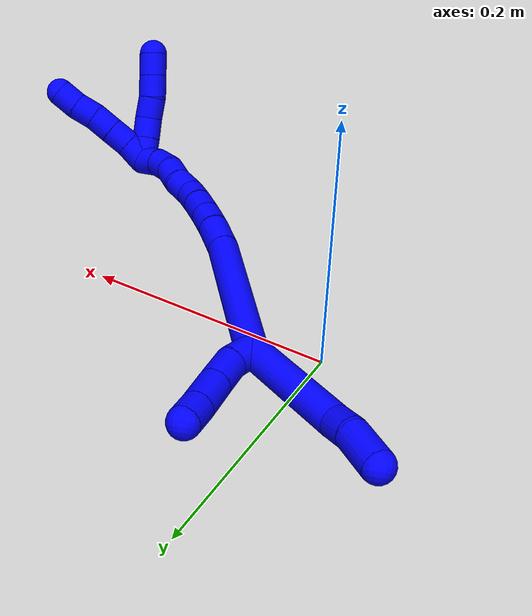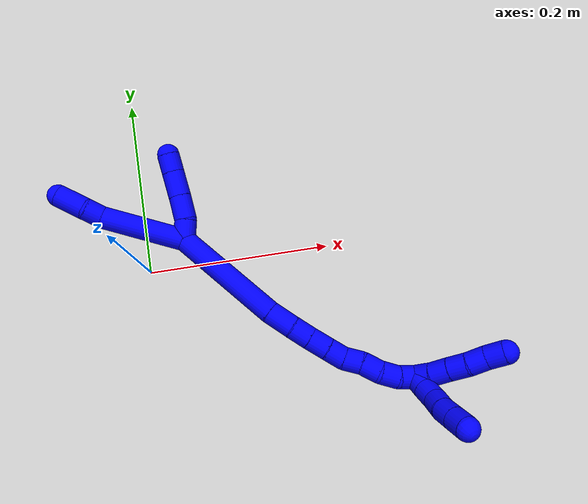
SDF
<sdf version="1.7">
 <world name="default">
  <model name="1">
   <static>0</static>
   <link name="1">
    <collision name="collision-cylinder-e_1_2_8">
     <pose>-0.030179 0.029188 -0.022548 -2.22855 -0.685759 1.25706</pose>
     <geometry><cylinder><radius>0.0125</radius><length>0.095312</length></cylinder></geometry>
     <surface>
      <friction><ode><mu>1.16</mu><mu2>1.16</mu2><slip1>0</slip1><slip2>0</slip2></ode></friction>
      <contact><ode><kp>1e+06</kp><kd>1</kd><max_vel>0</max_vel><min_depth>0.001</min_depth></ode></contact>
     </surface>
    </collision>
    <visual name="visual-cylinder-e_1_2_8">
     <pose>-0.030179 0.029188 -0.022548 -2.22855 -0.685759 1.25706</pose>
     <geometry><cylinder><radius>0.0125</radius><length>0.095312</length></cylinder></geometry>
     <material><ambient>0 0 1 1</ambient></material>
    </visual>
    <collision name="collision-cylinder-e_2_8_9">
     <pose>-0.065228 0.067127 -0.048683 -1.95971 -0.475533 0.693273</pose>
     <geometry><cylinder><radius>0.0125</radius><length>0.021277</length></cylinder></geometry>
     <surface>
      <friction><ode><mu>1.16</mu><mu2>1.16</mu2><slip1>0</slip1><slip2>0</slip2></ode></friction>
      <contact><ode><kp>1e+06</kp><kd>1</kd><max_vel>0</max_vel><min_depth>0.001</min_depth></ode></contact>
     </surface>
    </collision>
    <visual name="visual-cylinder-e_2_8_9">
     <pose>-0.065228 0.067127 -0.048683 -1.95971 -0.475533 0.693273</pose>
     <geometry><cylinder><radius>0.0125</radius><length>0.021277</length></cylinder></geometry>
     <material><ambient>0 0 1 1</ambient></material>
    </visual>
    <collision name="collision-cylinder-e_3_9_6">
     <pose>-0.078026 0.087323 -0.061502 -2.24968 -0.494468 0.971508</pose>
     <geometry><cylinder><radius>0.0125</radius><length>0.033411</length></cylinder></geometry>
     <surface>
      <friction><ode><mu>1.16</mu><mu2>1.16</mu2><slip1>0</slip1><slip2>0</slip2></ode></friction>
      <contact><ode><kp>1e+06</kp><kd>1</kd><max_vel>0</max_vel><min_depth>0.001</min_depth></ode></contact>
     </surface>
    </collision>
    <visual name="visual-cylinder-e_3_9_6">
     <pose>-0.078026 0.087323 -0.061502 -2.24968 -0.494468 0.971508</pose>
     <geometry><cylinder><radius>0.0125</radius><length>0.033411</length></cylinder></geometry>
     <material><ambient>0 0 1 1</ambient></material>
    </visual>
    <collision name="collision-cylinder-e_1_2_10">
     <pose>0.00689 0.006338 -0.006089 -2.33617 0.664851 -1.36213</pose>
     <geometry><cylinder><radius>0.0125</radius><length>0.022336</length></cylinder></geometry>
     <surface>
      <friction><ode><mu>1.16</mu><mu2>1.16</mu2><slip1>0</slip1><slip2>0</slip2></ode></friction>
      <contact><ode><kp>1e+06</kp><kd>1</kd><max_vel>0</max_vel><min_depth>0.001</min_depth></ode></contact>
     </surface>
    </collision>
    <visual name="visual-cylinder-e_1_2_10">
     <pose>0.00689 0.006338 -0.006089 -2.33617 0.664851 -1.36213</pose>
     <geometry><cylinder><radius>0.0125</radius><length>0.022336</length></cylinder></geometry>
     <material><ambient>0 0 1 1</ambient></material>
    </visual>
    <collision name="collision-cylinder-e_2_10_11">
     <pose>0.01855 0.021835 -0.021232 -2.35044 0.354754 -0.810974</pose>
     <geometry><cylinder><radius>0.0125</radius><length>0.027466</length></cylinder></geometry>
     <surface>
      <friction><ode><mu>1.16</mu><mu2>1.16</mu2><slip1>0</slip1><slip2>0</slip2></ode></friction>
      <contact><ode><kp>1e+06</kp><kd>1</kd><max_vel>0</max_vel><min_depth>0.001</min_depth></ode></contact>
     </surface>
    </collision>
    <visual name="visual-cylinder-e_2_10_11">
     <pose>0.01855 0.021835 -0.021232 -2.35044 0.354754 -0.810974</pose>
     <geometry><cylinder><radius>0.0125</radius><length>0.027466</length></cylinder></geometry>
     <material><ambient>0 0 1 1</ambient></material>
    </visual>
    <collision name="collision-cylinder-e_3_11_12">
     <pose>0.028001 0.041015 -0.039601 -2.31964 0.329609 -0.729145</pose>
     <geometry><cylinder><radius>0.0125</radius><length>0.028921</length></cylinder></geometry>
     <surface>
      <friction><ode><mu>1.16</mu><mu2>1.16</mu2><slip1>0</slip1><slip2>0</slip2></ode></friction>
      <contact><ode><kp>1e+06</kp><kd>1</kd><max_vel>0</max_vel><min_depth>0.001</min_depth></ode></contact>
     </surface>
    </collision>
    <visual name="visual-cylinder-e_3_11_12">
     <pose>0.028001 0.041015 -0.039601 -2.31964 0.329609 -0.729145</pose>
     <geometry><cylinder><radius>0.0125</radius><length>0.028921</length></cylinder></geometry>
     <material><ambient>0 0 1 1</ambient></material>
    </visual>
    <collision name="collision-cylinder-e_4_12_5">
     <pose>0.036248 0.058965 -0.055047 -2.22911 0.341809 -0.676316</pose>
     <geometry><cylinder><radius>0.0125</radius><length>0.021276</length></cylinder></geometry>
     <surface>
      <friction><ode><mu>1.16</mu><mu2>1.16</mu2><slip1>0</slip1><slip2>0</slip2></ode></friction>
      <contact><ode><kp>1e+06</kp><kd>1</kd><max_vel>0</max_vel><min_depth>0.001</min_depth></ode></contact>
     </surface>
    </collision>
    <visual name="visual-cylinder-e_4_12_5">
     <pose>0.036248 0.058965 -0.055047 -2.22911 0.341809 -0.676316</pose>
     <geometry><cylinder><radius>0.0125</radius><length>0.021276</length></cylinder></geometry>
     <material><ambient>0 0 1 1</ambient></material>
    </visual>
    <collision name="collision-cylinder-e_1_2_13">
     <pose>0.016217 -0.041956 0.044094 0.760554 0.260386 0.104582</pose>
     <geometry><cylinder><radius>0.0125</radius><length>0.125978</length></cylinder></geometry>
     <surface>
      <friction><ode><mu>1.16</mu><mu2>1.16</mu2><slip1>0</slip1><slip2>0</slip2></ode></friction>
      <contact><ode><kp>1e+06</kp><kd>1</kd><max_vel>0</max_vel><min_depth>0.001</min_depth></ode></contact>
     </surface>
    </collision>
    <visual name="visual-cylinder-e_1_2_13">
     <pose>0.016217 -0.041956 0.044094 0.760554 0.260386 0.104582</pose>
     <geometry><cylinder><radius>0.0125</radius><length>0.125978</length></cylinder></geometry>
     <material><ambient>0 0 1 1</ambient></material>
    </visual>
    <collision name="collision-cylinder-e_2_13_14">
     <pose>0.037764 -0.093325 0.098024 0.763474 0.3732 0.151287</pose>
     <geometry><cylinder><radius>0.0125</radius><length>0.02924</length></cylinder></geometry>
     <surface>
      <friction><ode><mu>1.16</mu><mu2>1.16</mu2><slip1>0</slip1><slip2>0</slip2></ode></friction>
      <contact><ode><kp>1e+06</kp><kd>1</kd><max_vel>0</max_vel><min_depth>0.001</min_depth></ode></contact>
     </surface>
    </collision>
    <visual name="visual-cylinder-e_2_13_14">
     <pose>0.037764 -0.093325 0.098024 0.763474 0.3732 0.151287</pose>
     <geometry><cylinder><radius>0.0125</radius><length>0.02924</length></cylinder></geometry>
     <material><ambient>0 0 1 1</ambient></material>
    </visual>
    <collision name="collision-cylinder-e_3_14_15">
     <pose>0.047174 -0.110262 0.114416 0.853938 0.38809 0.17834</pose>
     <geometry><cylinder><radius>0.0125</radius><length>0.021564</length></cylinder></geometry>
     <surface>
      <friction><ode><mu>1.16</mu><mu2>1.16</mu2><slip1>0</slip1><slip2>0</slip2></ode></friction>
      <contact><ode><kp>1e+06</kp><kd>1</kd><max_vel>0</max_vel><min_depth>0.001</min_depth></ode></contact>
     </surface>
    </collision>
    <visual name="visual-cylinder-e_3_14_15">
     <pose>0.047174 -0.110262 0.114416 0.853938 0.38809 0.17834</pose>
     <geometry><cylinder><radius>0.0125</radius><length>0.021564</length></cylinder></geometry>
     <material><ambient>0 0 1 1</ambient></material>
    </visual>
    <collision name="collision-cylinder-e_4_15_16">
     <pose>0.055753 -0.125442 0.127528 0.86276 0.419774 0.195482</pose>
     <geometry><cylinder><radius>0.0125</radius><length>0.022074</length></cylinder></geometry>
     <surface>
      <friction><ode><mu>1.16</mu><mu2>1.16</mu2><slip1>0</slip1><slip2>0</slip2></ode></friction>
      <contact><ode><kp>1e+06</kp><kd>1</kd><max_vel>0</max_vel><min_depth>0.001</min_depth></ode></contact>
     </surface>
    </collision>
    <visual name="visual-cylinder-e_4_15_16">
     <pose>0.055753 -0.125442 0.127528 0.86276 0.419774 0.195482</pose>
     <geometry><cylinder><radius>0.0125</radius><length>0.022074</length></cylinder></geometry>
     <material><ambient>0 0 1 1</ambient></material>
    </visual>
    <collision name="collision-cylinder-e_5_16_17">
     <pose>0.064367 -0.140412 0.139624 0.922345 0.42169 0.211907</pose>
     <geometry><cylinder><radius>0.0125</radius><length>0.020115</length></cylinder></geometry>
     <surface>
      <friction><ode><mu>1.16</mu><mu2>1.16</mu2><slip1>0</slip1><slip2>0</slip2></ode></friction>
      <contact><ode><kp>1e+06</kp><kd>1</kd><max_vel>0</max_vel><min_depth>0.001</min_depth></ode></contact>
     </surface>
    </collision>
    <visual name="visual-cylinder-e_5_16_17">
     <pose>0.064367 -0.140412 0.139624 0.922345 0.42169 0.211907</pose>
     <geometry><cylinder><radius>0.0125</radius><length>0.020115</length></cylinder></geometry>
     <material><ambient>0 0 1 1</ambient></material>
    </visual>
    <collision name="collision-cylinder-e_6_17_18">
     <pose>0.075054 -0.152772 0.15077 0.733155 0.716697 0.285621</pose>
     <geometry><cylinder><radius>0.0125</radius><length>0.020004</length></cylinder></geometry>
     <surface>
      <friction><ode><mu>1.16</mu><mu2>1.16</mu2><slip1>0</slip1><slip2>0</slip2></ode></friction>
      <contact><ode><kp>1e+06</kp><kd>1</kd><max_vel>0</max_vel><min_depth>0.001</min_depth></ode></contact>
     </surface>
    </collision>
    <visual name="visual-cylinder-e_6_17_18">
     <pose>0.075054 -0.152772 0.15077 0.733155 0.716697 0.285621</pose>
     <geometry><cylinder><radius>0.0125</radius><length>0.020004</length></cylinder></geometry>
     <material><ambient>0 0 1 1</ambient></material>
    </visual>
    <collision name="collision-cylinder-e_7_18_19">
     <pose>0.086503 -0.164056 0.1631 0.747639 0.48877 0.195017</pose>
     <geometry><cylinder><radius>0.0125</radius><length>0.020779</length></cylinder></geometry>
     <surface>
      <friction><ode><mu>1.16</mu><mu2>1.16</mu2><slip1>0</slip1><slip2>0</slip2></ode></friction>
      <contact><ode><kp>1e+06</kp><kd>1</kd><max_vel>0</max_vel><min_depth>0.001</min_depth></ode></contact>
     </surface>
    </collision>
    <visual name="visual-cylinder-e_7_18_19">
     <pose>0.086503 -0.164056 0.1631 0.747639 0.48877 0.195017</pose>
     <geometry><cylinder><radius>0.0125</radius><length>0.020779</length></cylinder></geometry>
     <material><ambient>0 0 1 1</ambient></material>
    </visual>
    <collision name="collision-cylinder-e_8_19_20">
     <pose>0.09762 -0.177076 0.173962 1.0233 0.665771 0.383526</pose>
     <geometry><cylinder><radius>0.0125</radius><length>0.020203</length></cylinder></geometry>
     <surface>
      <friction><ode><mu>1.16</mu><mu2>1.16</mu2><slip1>0</slip1><slip2>0</slip2></ode></friction>
      <contact><ode><kp>1e+06</kp><kd>1</kd><max_vel>0</max_vel><min_depth>0.001</min_depth></ode></contact>
     </surface>
    </collision>
    <visual name="visual-cylinder-e_8_19_20">
     <pose>0.09762 -0.177076 0.173962 1.0233 0.665771 0.383526</pose>
     <geometry><cylinder><radius>0.0125</radius><length>0.020203</length></cylinder></geometry>
     <material><ambient>0 0 1 1</ambient></material>
    </visual>
    <collision name="collision-cylinder-e_9_20_1">
     <pose>0.111634 -0.189968 0.179732 1.30951 0.887868 0.700184</pose>
     <geometry><cylinder><radius>0.0125</radius><length>0.020043</length></cylinder></geometry>
     <surface>
      <friction><ode><mu>1.16</mu><mu2>1.16</mu2><slip1>0</slip1><slip2>0</slip2></ode></friction>
      <contact><ode><kp>1e+06</kp><kd>1</kd><max_vel>0</max_vel><min_depth>0.001</min_depth></ode></contact>
     </surface>
    </collision>
    <visual name="visual-cylinder-e_9_20_1">
     <pose>0.111634 -0.189968 0.179732 1.30951 0.887868 0.700184</pose>
     <geometry><cylinder><radius>0.0125</radius><length>0.020043</length></cylinder></geometry>
     <material><ambient>0 0 1 1</ambient></material>
    </visual>
    <collision name="collision-cylinder-e_1_1_21">
     <pose>0.119473 -0.195832 0.191362 -0.024606 0.006527 -8e-05</pose>
     <geometry><cylinder><radius>0.0125</radius><length>0.02</length></cylinder></geometry>
     <surface>
      <friction><ode><mu>1.16</mu><mu2>1.16</mu2><slip1>0</slip1><slip2>0</slip2></ode></friction>
      <contact><ode><kp>1e+06</kp><kd>1</kd><max_vel>0</max_vel><min_depth>0.001</min_depth></ode></contact>
     </surface>
    </collision>
    <visual name="visual-cylinder-e_1_1_21">
     <pose>0.119473 -0.195832 0.191362 -0.024606 0.006527 -8e-05</pose>
     <geometry><cylinder><radius>0.0125</radius><length>0.02</length></cylinder></geometry>
     <material><ambient>0 0 1 1</ambient></material>
    </visual>
    <collision name="collision-cylinder-e_2_21_22">
     <pose>0.119842 -0.194107 0.211244 -0.148519 0.030387 -0.002261</pose>
     <geometry><cylinder><radius>0.0125</radius><length>0.02</length></cylinder></geometry>
     <surface>
      <friction><ode><mu>1.16</mu><mu2>1.16</mu2><slip1>0</slip1><slip2>0</slip2></ode></friction>
      <contact><ode><kp>1e+06</kp><kd>1</kd><max_vel>0</max_vel><min_depth>0.001</min_depth></ode></contact>
     </surface>
    </collision>
    <visual name="visual-cylinder-e_2_21_22">
     <pose>0.119842 -0.194107 0.211244 -0.148519 0.030387 -0.002261</pose>
     <geometry><cylinder><radius>0.0125</radius><length>0.02</length></cylinder></geometry>
     <material><ambient>0 0 1 1</ambient></material>
    </visual>
    <collision name="collision-cylinder-e_3_22_23">
     <pose>0.119728 -0.189266 0.230538 -0.34315 -0.041845 0.007252</pose>
     <geometry><cylinder><radius>0.0125</radius><length>0.02</length></cylinder></geometry>
     <surface>
      <friction><ode><mu>1.16</mu><mu2>1.16</mu2><slip1>0</slip1><slip2>0</slip2></ode></friction>
      <contact><ode><kp>1e+06</kp><kd>1</kd><max_vel>0</max_vel><min_depth>0.001</min_depth></ode></contact>
     </surface>
    </collision>
    <visual name="visual-cylinder-e_3_22_23">
     <pose>0.119728 -0.189266 0.230538 -0.34315 -0.041845 0.007252</pose>
     <geometry><cylinder><radius>0.0125</radius><length>0.02</length></cylinder></geometry>
     <material><ambient>0 0 1 1</ambient></material>
    </visual>
    <collision name="collision-cylinder-e_4_23_24">
     <pose>0.120532 -0.183195 0.249495 -0.276488 0.122556 -0.017072</pose>
     <geometry><cylinder><radius>0.0125</radius><length>0.02</length></cylinder></geometry>
     <surface>
      <friction><ode><mu>1.16</mu><mu2>1.16</mu2><slip1>0</slip1><slip2>0</slip2></ode></friction>
      <contact><ode><kp>1e+06</kp><kd>1</kd><max_vel>0</max_vel><min_depth>0.001</min_depth></ode></contact>
     </surface>
    </collision>
    <visual name="visual-cylinder-e_4_23_24">
     <pose>0.120532 -0.183195 0.249495 -0.276488 0.122556 -0.017072</pose>
     <geometry><cylinder><radius>0.0125</radius><length>0.02</length></cylinder></geometry>
     <material><ambient>0 0 1 1</ambient></material>
    </visual>
    <collision name="collision-cylinder-e_5_24_4">
     <pose>0.123002 -0.177723 0.268572 -0.282225 0.12509 -0.017793</pose>
     <geometry><cylinder><radius>0.0125</radius><length>0.02</length></cylinder></geometry>
     <surface>
      <friction><ode><mu>1.16</mu><mu2>1.16</mu2><slip1>0</slip1><slip2>0</slip2></ode></friction>
      <contact><ode><kp>1e+06</kp><kd>1</kd><max_vel>0</max_vel><min_depth>0.001</min_depth></ode></contact>
     </surface>
    </collision>
    <visual name="visual-cylinder-e_5_24_4">
     <pose>0.123002 -0.177723 0.268572 -0.282225 0.12509 -0.017793</pose>
     <geometry><cylinder><radius>0.0125</radius><length>0.02</length></cylinder></geometry>
     <material><ambient>0 0 1 1</ambient></material>
    </visual>
    <collision name="collision-cylinder-e_1_1_25">
     <pose>0.12712 -0.194532 0.18754 -0.245374 0.880748 -0.116083</pose>
     <geometry><cylinder><radius>0.0125</radius><length>0.02</length></cylinder></geometry>
     <surface>
      <friction><ode><mu>1.16</mu><mu2>1.16</mu2><slip1>0</slip1><slip2>0</slip2></ode></friction>
      <contact><ode><kp>1e+06</kp><kd>1</kd><max_vel>0</max_vel><min_depth>0.001</min_depth></ode></contact>
     </surface>
    </collision>
    <visual name="visual-cylinder-e_1_1_25">
     <pose>0.12712 -0.194532 0.18754 -0.245374 0.880748 -0.116083</pose>
     <geometry><cylinder><radius>0.0125</radius><length>0.02</length></cylinder></geometry>
     <material><ambient>0 0 1 1</ambient></material>
    </visual>
    <collision name="collision-cylinder-e_2_25_26">
     <pose>0.143431 -0.191503 0.1986 -0.294758 1.03508 -0.168631</pose>
     <geometry><cylinder><radius>0.0125</radius><length>0.02</length></cylinder></geometry>
     <surface>
      <friction><ode><mu>1.16</mu><mu2>1.16</mu2><slip1>0</slip1><slip2>0</slip2></ode></friction>
      <contact><ode><kp>1e+06</kp><kd>1</kd><max_vel>0</max_vel><min_depth>0.001</min_depth></ode></contact>
     </surface>
    </collision>
    <visual name="visual-cylinder-e_2_25_26">
     <pose>0.143431 -0.191503 0.1986 -0.294758 1.03508 -0.168631</pose>
     <geometry><cylinder><radius>0.0125</radius><length>0.02</length></cylinder></geometry>
     <material><ambient>0 0 1 1</ambient></material>
    </visual>
    <collision name="collision-cylinder-e_3_26_27">
     <pose>0.160572 -0.188825 0.208544 -0.231856 1.02403 -0.130706</pose>
     <geometry><cylinder><radius>0.0125</radius><length>0.02</length></cylinder></geometry>
     <surface>
      <friction><ode><mu>1.16</mu><mu2>1.16</mu2><slip1>0</slip1><slip2>0</slip2></ode></friction>
      <contact><ode><kp>1e+06</kp><kd>1</kd><max_vel>0</max_vel><min_depth>0.001</min_depth></ode></contact>
     </surface>
    </collision>
    <visual name="visual-cylinder-e_3_26_27">
     <pose>0.160572 -0.188825 0.208544 -0.231856 1.02403 -0.130706</pose>
     <geometry><cylinder><radius>0.0125</radius><length>0.02</length></cylinder></geometry>
     <material><ambient>0 0 1 1</ambient></material>
    </visual>
    <collision name="collision-cylinder-e_4_27_28">
     <pose>0.178376 -0.18679 0.217281 -0.224578 1.18415 -0.151392</pose>
     <geometry><cylinder><radius>0.0125</radius><length>0.02</length></cylinder></geometry>
     <surface>
      <friction><ode><mu>1.16</mu><mu2>1.16</mu2><slip1>0</slip1><slip2>0</slip2></ode></friction>
      <contact><ode><kp>1e+06</kp><kd>1</kd><max_vel>0</max_vel><min_depth>0.001</min_depth></ode></contact>
     </surface>
    </collision>
    <visual name="visual-cylinder-e_4_27_28">
     <pose>0.178376 -0.18679 0.217281 -0.224578 1.18415 -0.151392</pose>
     <geometry><cylinder><radius>0.0125</radius><length>0.02</length></cylinder></geometry>
     <material><ambient>0 0 1 1</ambient></material>
    </visual>
    <collision name="collision-cylinder-e_5_28_3">
     <pose>0.196179 -0.184543 0.225965 -0.274017 1.0237 -0.154601</pose>
     <geometry><cylinder><radius>0.0125</radius><length>0.02</length></cylinder></geometry>
     <surface>
      <friction><ode><mu>1.16</mu><mu2>1.16</mu2><slip1>0</slip1><slip2>0</slip2></ode></friction>
      <contact><ode><kp>1e+06</kp><kd>1</kd><max_vel>0</max_vel><min_depth>0.001</min_depth></ode></contact>
     </surface>
    </collision>
    <visual name="visual-cylinder-e_5_28_3">
     <pose>0.196179 -0.184543 0.225965 -0.274017 1.0237 -0.154601</pose>
     <geometry><cylinder><radius>0.0125</radius><length>0.02</length></cylinder></geometry>
     <material><ambient>0 0 1 1</ambient></material>
    </visual>
    <collision name="collision-sphere-3">
     <pose>0.204719 -0.183135 0.230973 0 -0 0</pose>
     <geometry><sphere><radius>0.0125</radius></sphere></geometry>
     <surface>
      <friction><ode><mu>1.16</mu><mu2>1.16</mu2><slip1>0</slip1><slip2>0</slip2></ode></friction>
      <contact><ode><kp>1e+06</kp><kd>1</kd><max_vel>0</max_vel><min_depth>0.001</min_depth></ode></contact>
     </surface>
    </collision>
    <visual name="visual-sphere-3">
     <pose>0.204719 -0.183135 0.230973 0 -0 0</pose>
     <geometry><sphere><radius>0.0125</radius></sphere></geometry>
     <material><ambient>0 0 1 1</ambient></material>
    </visual>
    <collision name="collision-sphere-28">
     <pose>0.187638 -0.185951 0.220957 0 -0 0</pose>
     <geometry><sphere><radius>0.0125</radius></sphere></geometry>
     <surface>
      <friction><ode><mu>1.16</mu><mu2>1.16</mu2><slip1>0</slip1><slip2>0</slip2></ode></friction>
      <contact><ode><kp>1e+06</kp><kd>1</kd><max_vel>0</max_vel><min_depth>0.001</min_depth></ode></contact>
     </surface>
    </collision>
    <visual name="visual-sphere-28">
     <pose>0.187638 -0.185951 0.220957 0 -0 0</pose>
     <geometry><sphere><radius>0.0125</radius></sphere></geometry>
     <material><ambient>0 0 1 1</ambient></material>
    </visual>
    <collision name="collision-sphere-27">
     <pose>0.169115 -0.18763 0.213604 0 -0 0</pose>
     <geometry><sphere><radius>0.0125</radius></sphere></geometry>
     <surface>
      <friction><ode><mu>1.16</mu><mu2>1.16</mu2><slip1>0</slip1><slip2>0</slip2></ode></friction>
      <contact><ode><kp>1e+06</kp><kd>1</kd><max_vel>0</max_vel><min_depth>0.001</min_depth></ode></contact>
     </surface>
    </collision>
    <visual name="visual-sphere-27">
     <pose>0.169115 -0.18763 0.213604 0 -0 0</pose>
     <geometry><sphere><radius>0.0125</radius></sphere></geometry>
     <material><ambient>0 0 1 1</ambient></material>
    </visual>
    <collision name="collision-sphere-26">
     <pose>0.15203 -0.19002 0.203484 0 -0 0</pose>
     <geometry><sphere><radius>0.0125</radius></sphere></geometry>
     <surface>
      <friction><ode><mu>1.16</mu><mu2>1.16</mu2><slip1>0</slip1><slip2>0</slip2></ode></friction>
      <contact><ode><kp>1e+06</kp><kd>1</kd><max_vel>0</max_vel><min_depth>0.001</min_depth></ode></contact>
     </surface>
    </collision>
    <visual name="visual-sphere-26">
     <pose>0.15203 -0.19002 0.203484 0 -0 0</pose>
     <geometry><sphere><radius>0.0125</radius></sphere></geometry>
     <material><ambient>0 0 1 1</ambient></material>
    </visual>
    <collision name="collision-sphere-25">
     <pose>0.134832 -0.192985 0.193715 0 -0 0</pose>
     <geometry><sphere><radius>0.0125</radius></sphere></geometry>
     <surface>
      <friction><ode><mu>1.16</mu><mu2>1.16</mu2><slip1>0</slip1><slip2>0</slip2></ode></friction>
      <contact><ode><kp>1e+06</kp><kd>1</kd><max_vel>0</max_vel><min_depth>0.001</min_depth></ode></contact>
     </surface>
    </collision>
    <visual name="visual-sphere-25">
     <pose>0.134832 -0.192985 0.193715 0 -0 0</pose>
     <geometry><sphere><radius>0.0125</radius></sphere></geometry>
     <material><ambient>0 0 1 1</ambient></material>
    </visual>
    <collision name="collision-sphere-4">
     <pose>0.12425 -0.17496 0.278102 0 -0 0</pose>
     <geometry><sphere><radius>0.0125</radius></sphere></geometry>
     <surface>
      <friction><ode><mu>1.16</mu><mu2>1.16</mu2><slip1>0</slip1><slip2>0</slip2></ode></friction>
      <contact><ode><kp>1e+06</kp><kd>1</kd><max_vel>0</max_vel><min_depth>0.001</min_depth></ode></contact>
     </surface>
    </collision>
    <visual name="visual-sphere-4">
     <pose>0.12425 -0.17496 0.278102 0 -0 0</pose>
     <geometry><sphere><radius>0.0125</radius></sphere></geometry>
     <material><ambient>0 0 1 1</ambient></material>
    </visual>
    <collision name="collision-sphere-24">
     <pose>0.121754 -0.180486 0.259043 0 -0 0</pose>
     <geometry><sphere><radius>0.0125</radius></sphere></geometry>
     <surface>
      <friction><ode><mu>1.16</mu><mu2>1.16</mu2><slip1>0</slip1><slip2>0</slip2></ode></friction>
      <contact><ode><kp>1e+06</kp><kd>1</kd><max_vel>0</max_vel><min_depth>0.001</min_depth></ode></contact>
     </surface>
    </collision>
    <visual name="visual-sphere-24">
     <pose>0.121754 -0.180486 0.259043 0 -0 0</pose>
     <geometry><sphere><radius>0.0125</radius></sphere></geometry>
     <material><ambient>0 0 1 1</ambient></material>
    </visual>
    <collision name="collision-sphere-23">
     <pose>0.119309 -0.185905 0.239947 0 -0 0</pose>
     <geometry><sphere><radius>0.0125</radius></sphere></geometry>
     <surface>
      <friction><ode><mu>1.16</mu><mu2>1.16</mu2><slip1>0</slip1><slip2>0</slip2></ode></friction>
      <contact><ode><kp>1e+06</kp><kd>1</kd><max_vel>0</max_vel><min_depth>0.001</min_depth></ode></contact>
     </surface>
    </collision>
    <visual name="visual-sphere-23">
     <pose>0.119309 -0.185905 0.239947 0 -0 0</pose>
     <geometry><sphere><radius>0.0125</radius></sphere></geometry>
     <material><ambient>0 0 1 1</ambient></material>
    </visual>
    <collision name="collision-sphere-22">
     <pose>0.120146 -0.192628 0.221129 0 -0 0</pose>
     <geometry><sphere><radius>0.0125</radius></sphere></geometry>
     <surface>
      <friction><ode><mu>1.16</mu><mu2>1.16</mu2><slip1>0</slip1><slip2>0</slip2></ode></friction>
      <contact><ode><kp>1e+06</kp><kd>1</kd><max_vel>0</max_vel><min_depth>0.001</min_depth></ode></contact>
     </surface>
    </collision>
    <visual name="visual-sphere-22">
     <pose>0.120146 -0.192628 0.221129 0 -0 0</pose>
     <geometry><sphere><radius>0.0125</radius></sphere></geometry>
     <material><ambient>0 0 1 1</ambient></material>
    </visual>
    <collision name="collision-sphere-21">
     <pose>0.119538 -0.195586 0.201359 0 -0 0</pose>
     <geometry><sphere><radius>0.0125</radius></sphere></geometry>
     <surface>
      <friction><ode><mu>1.16</mu><mu2>1.16</mu2><slip1>0</slip1><slip2>0</slip2></ode></friction>
      <contact><ode><kp>1e+06</kp><kd>1</kd><max_vel>0</max_vel><min_depth>0.001</min_depth></ode></contact>
     </surface>
    </collision>
    <visual name="visual-sphere-21">
     <pose>0.119538 -0.195586 0.201359 0 -0 0</pose>
     <geometry><sphere><radius>0.0125</radius></sphere></geometry>
     <material><ambient>0 0 1 1</ambient></material>
    </visual>
    <collision name="collision-sphere-1">
     <pose>0.119408 -0.196078 0.181365 0 -0 0</pose>
     <geometry><sphere><radius>0.0125</radius></sphere></geometry>
     <surface>
      <friction><ode><mu>1.16</mu><mu2>1.16</mu2><slip1>0</slip1><slip2>0</slip2></ode></friction>
      <contact><ode><kp>1e+06</kp><kd>1</kd><max_vel>0</max_vel><min_depth>0.001</min_depth></ode></contact>
     </surface>
    </collision>
    <visual name="visual-sphere-1">
     <pose>0.119408 -0.196078 0.181365 0 -0 0</pose>
     <geometry><sphere><radius>0.0125</radius></sphere></geometry>
     <material><ambient>0 0 1 1</ambient></material>
    </visual>
    <collision name="collision-sphere-11">
     <pose>0.023321 0.030993 -0.030286 0 -0 0</pose>
     <geometry><sphere><radius>0.0125</radius></sphere></geometry>
     <surface>
      <friction><ode><mu>1.16</mu><mu2>1.16</mu2><slip1>0</slip1><slip2>0</slip2></ode></friction>
      <contact><ode><kp>1e+06</kp><kd>1</kd><max_vel>0</max_vel><min_depth>0.001</min_depth></ode></contact>
     </surface>
    </collision>
    <visual name="visual-sphere-11">
     <pose>0.023321 0.030993 -0.030286 0 -0 0</pose>
     <geometry><sphere><radius>0.0125</radius></sphere></geometry>
     <material><ambient>0 0 1 1</ambient></material>
    </visual>
    <collision name="collision-sphere-10">
     <pose>0.01378 0.012676 -0.012179 0 -0 0</pose>
     <geometry><sphere><radius>0.0125</radius></sphere></geometry>
     <surface>
      <friction><ode><mu>1.16</mu><mu2>1.16</mu2><slip1>0</slip1><slip2>0</slip2></ode></friction>
      <contact><ode><kp>1e+06</kp><kd>1</kd><max_vel>0</max_vel><min_depth>0.001</min_depth></ode></contact>
     </surface>
    </collision>
    <visual name="visual-sphere-10">
     <pose>0.01378 0.012676 -0.012179 0 -0 0</pose>
     <geometry><sphere><radius>0.0125</radius></sphere></geometry>
     <material><ambient>0 0 1 1</ambient></material>
    </visual>
    <collision name="collision-sphere-6">
     <pose>-0.085954 0.098767 -0.070736 0 -0 0</pose>
     <geometry><sphere><radius>0.0125</radius></sphere></geometry>
     <surface>
      <friction><ode><mu>1.16</mu><mu2>1.16</mu2><slip1>0</slip1><slip2>0</slip2></ode></friction>
      <contact><ode><kp>1e+06</kp><kd>1</kd><max_vel>0</max_vel><min_depth>0.001</min_depth></ode></contact>
     </surface>
    </collision>
    <visual name="visual-sphere-6">
     <pose>-0.085954 0.098767 -0.070736 0 -0 0</pose>
     <geometry><sphere><radius>0.0125</radius></sphere></geometry>
     <material><ambient>0 0 1 1</ambient></material>
    </visual>
    <collision name="collision-sphere-9">
     <pose>-0.070098 0.075879 -0.052269 0 -0 0</pose>
     <geometry><sphere><radius>0.0125</radius></sphere></geometry>
     <surface>
      <friction><ode><mu>1.16</mu><mu2>1.16</mu2><slip1>0</slip1><slip2>0</slip2></ode></friction>
      <contact><ode><kp>1e+06</kp><kd>1</kd><max_vel>0</max_vel><min_depth>0.001</min_depth></ode></contact>
     </surface>
    </collision>
    <visual name="visual-sphere-9">
     <pose>-0.070098 0.075879 -0.052269 0 -0 0</pose>
     <geometry><sphere><radius>0.0125</radius></sphere></geometry>
     <material><ambient>0 0 1 1</ambient></material>
    </visual>
    <collision name="collision-sphere-2">
     <geometry><sphere><radius>0.0125</radius></sphere></geometry>
     <surface>
      <friction><ode><mu>1.16</mu><mu2>1.16</mu2><slip1>0</slip1><slip2>0</slip2></ode></friction>
      <contact><ode><kp>1e+06</kp><kd>1</kd><max_vel>0</max_vel><min_depth>0.001</min_depth></ode></contact>
     </surface>
    </collision>
    <visual name="visual-sphere-2">
     <geometry><sphere><radius>0.0125</radius></sphere></geometry>
     <material><ambient>0 0 1 1</ambient></material>
    </visual>
    <collision name="collision-sphere-19">
     <pose>0.091381 -0.170293 0.169827 0 -0 0</pose>
     <geometry><sphere><radius>0.0125</radius></sphere></geometry>
     <surface>
      <friction><ode><mu>1.16</mu><mu2>1.16</mu2><slip1>0</slip1><slip2>0</slip2></ode></friction>
      <contact><ode><kp>1e+06</kp><kd>1</kd><max_vel>0</max_vel><min_depth>0.001</min_depth></ode></contact>
     </surface>
    </collision>
    <visual name="visual-sphere-19">
     <pose>0.091381 -0.170293 0.169827 0 -0 0</pose>
     <geometry><sphere><radius>0.0125</radius></sphere></geometry>
     <material><ambient>0 0 1 1</ambient></material>
    </visual>
    <collision name="collision-sphere-8">
     <pose>-0.060357 0.058376 -0.045096 0 -0 0</pose>
     <geometry><sphere><radius>0.0125</radius></sphere></geometry>
     <surface>
      <friction><ode><mu>1.16</mu><mu2>1.16</mu2><slip1>0</slip1><slip2>0</slip2></ode></friction>
      <contact><ode><kp>1e+06</kp><kd>1</kd><max_vel>0</max_vel><min_depth>0.001</min_depth></ode></contact>
     </surface>
    </collision>
    <visual name="visual-sphere-8">
     <pose>-0.060357 0.058376 -0.045096 0 -0 0</pose>
     <geometry><sphere><radius>0.0125</radius></sphere></geometry>
     <material><ambient>0 0 1 1</ambient></material>
    </visual>
    <collision name="collision-sphere-12">
     <pose>0.032682 0.051037 -0.048915 0 -0 0</pose>
     <geometry><sphere><radius>0.0125</radius></sphere></geometry>
     <surface>
      <friction><ode><mu>1.16</mu><mu2>1.16</mu2><slip1>0</slip1><slip2>0</slip2></ode></friction>
      <contact><ode><kp>1e+06</kp><kd>1</kd><max_vel>0</max_vel><min_depth>0.001</min_depth></ode></contact>
     </surface>
    </collision>
    <visual name="visual-sphere-12">
     <pose>0.032682 0.051037 -0.048915 0 -0 0</pose>
     <geometry><sphere><radius>0.0125</radius></sphere></geometry>
     <material><ambient>0 0 1 1</ambient></material>
    </visual>
    <collision name="collision-sphere-5">
     <pose>0.039813 0.066893 -0.061179 0 -0 0</pose>
     <geometry><sphere><radius>0.0125</radius></sphere></geometry>
     <surface>
      <friction><ode><mu>1.16</mu><mu2>1.16</mu2><slip1>0</slip1><slip2>0</slip2></ode></friction>
      <contact><ode><kp>1e+06</kp><kd>1</kd><max_vel>0</max_vel><min_depth>0.001</min_depth></ode></contact>
     </surface>
    </collision>
    <visual name="visual-sphere-5">
     <pose>0.039813 0.066893 -0.061179 0 -0 0</pose>
     <geometry><sphere><radius>0.0125</radius></sphere></geometry>
     <material><ambient>0 0 1 1</ambient></material>
    </visual>
    <collision name="collision-sphere-13">
     <pose>0.032433 -0.083912 0.088189 0 -0 0</pose>
     <geometry><sphere><radius>0.0125</radius></sphere></geometry>
     <surface>
      <friction><ode><mu>1.16</mu><mu2>1.16</mu2><slip1>0</slip1><slip2>0</slip2></ode></friction>
      <contact><ode><kp>1e+06</kp><kd>1</kd><max_vel>0</max_vel><min_depth>0.001</min_depth></ode></contact>
     </surface>
    </collision>
    <visual name="visual-sphere-13">
     <pose>0.032433 -0.083912 0.088189 0 -0 0</pose>
     <geometry><sphere><radius>0.0125</radius></sphere></geometry>
     <material><ambient>0 0 1 1</ambient></material>
    </visual>
    <collision name="collision-sphere-14">
     <pose>0.043094 -0.102738 0.107859 0 -0 0</pose>
     <geometry><sphere><radius>0.0125</radius></sphere></geometry>
     <surface>
      <friction><ode><mu>1.16</mu><mu2>1.16</mu2><slip1>0</slip1><slip2>0</slip2></ode></friction>
      <contact><ode><kp>1e+06</kp><kd>1</kd><max_vel>0</max_vel><min_depth>0.001</min_depth></ode></contact>
     </surface>
    </collision>
    <visual name="visual-sphere-14">
     <pose>0.043094 -0.102738 0.107859 0 -0 0</pose>
     <geometry><sphere><radius>0.0125</radius></sphere></geometry>
     <material><ambient>0 0 1 1</ambient></material>
    </visual>
    <collision name="collision-sphere-15">
     <pose>0.051254 -0.117786 0.120973 0 -0 0</pose>
     <geometry><sphere><radius>0.0125</radius></sphere></geometry>
     <surface>
      <friction><ode><mu>1.16</mu><mu2>1.16</mu2><slip1>0</slip1><slip2>0</slip2></ode></friction>
      <contact><ode><kp>1e+06</kp><kd>1</kd><max_vel>0</max_vel><min_depth>0.001</min_depth></ode></contact>
     </surface>
    </collision>
    <visual name="visual-sphere-15">
     <pose>0.051254 -0.117786 0.120973 0 -0 0</pose>
     <geometry><sphere><radius>0.0125</radius></sphere></geometry>
     <material><ambient>0 0 1 1</ambient></material>
    </visual>
    <collision name="collision-sphere-16">
     <pose>0.060251 -0.133098 0.134082 0 -0 0</pose>
     <geometry><sphere><radius>0.0125</radius></sphere></geometry>
     <surface>
      <friction><ode><mu>1.16</mu><mu2>1.16</mu2><slip1>0</slip1><slip2>0</slip2></ode></friction>
      <contact><ode><kp>1e+06</kp><kd>1</kd><max_vel>0</max_vel><min_depth>0.001</min_depth></ode></contact>
     </surface>
    </collision>
    <visual name="visual-sphere-16">
     <pose>0.060251 -0.133098 0.134082 0 -0 0</pose>
     <geometry><sphere><radius>0.0125</radius></sphere></geometry>
     <material><ambient>0 0 1 1</ambient></material>
    </visual>
    <collision name="collision-sphere-17">
     <pose>0.068484 -0.147725 0.145166 0 -0 0</pose>
     <geometry><sphere><radius>0.0125</radius></sphere></geometry>
     <surface>
      <friction><ode><mu>1.16</mu><mu2>1.16</mu2><slip1>0</slip1><slip2>0</slip2></ode></friction>
      <contact><ode><kp>1e+06</kp><kd>1</kd><max_vel>0</max_vel><min_depth>0.001</min_depth></ode></contact>
     </surface>
    </collision>
    <visual name="visual-sphere-17">
     <pose>0.068484 -0.147725 0.145166 0 -0 0</pose>
     <geometry><sphere><radius>0.0125</radius></sphere></geometry>
     <material><ambient>0 0 1 1</ambient></material>
    </visual>
    <collision name="collision-sphere-18">
     <pose>0.081624 -0.157819 0.156374 0 -0 0</pose>
     <geometry><sphere><radius>0.0125</radius></sphere></geometry>
     <surface>
      <friction><ode><mu>1.16</mu><mu2>1.16</mu2><slip1>0</slip1><slip2>0</slip2></ode></friction>
      <contact><ode><kp>1e+06</kp><kd>1</kd><max_vel>0</max_vel><min_depth>0.001</min_depth></ode></contact>
     </surface>
    </collision>
    <visual name="visual-sphere-18">
     <pose>0.081624 -0.157819 0.156374 0 -0 0</pose>
     <geometry><sphere><radius>0.0125</radius></sphere></geometry>
     <material><ambient>0 0 1 1</ambient></material>
    </visual>
    <collision name="collision-sphere-20">
     <pose>0.10386 -0.183859 0.178098 0 -0 0</pose>
     <geometry><sphere><radius>0.0125</radius></sphere></geometry>
     <surface>
      <friction><ode><mu>1.16</mu><mu2>1.16</mu2><slip1>0</slip1><slip2>0</slip2></ode></friction>
      <contact><ode><kp>1e+06</kp><kd>1</kd><max_vel>0</max_vel><min_depth>0.001</min_depth></ode></contact>
     </surface>
    </collision>
    <visual name="visual-sphere-20">
     <pose>0.10386 -0.183859 0.178098 0 -0 0</pose>
     <geometry><sphere><radius>0.0125</radius></sphere></geometry>
     <material><ambient>0 0 1 1</ambient></material>
    </visual>
    <inertial>
     <pose>0.050316 -0.076336 0.087389 0 -0 0</pose>
     <mass>0.75</mass>
     <inertia><ixx>0.0003</ixx><ixy>0</ixy><ixz>0</ixz><iyy>0.000245</iyy><iyz>0</iyz><izz>6.9e-05</izz></inertia>
    </inertial>
   </link>
   <pose>0.04293 0.029044 0.012288 0.795323 -0.102937 0.456561</pose>
  </model>
 </world>
</sdf>
